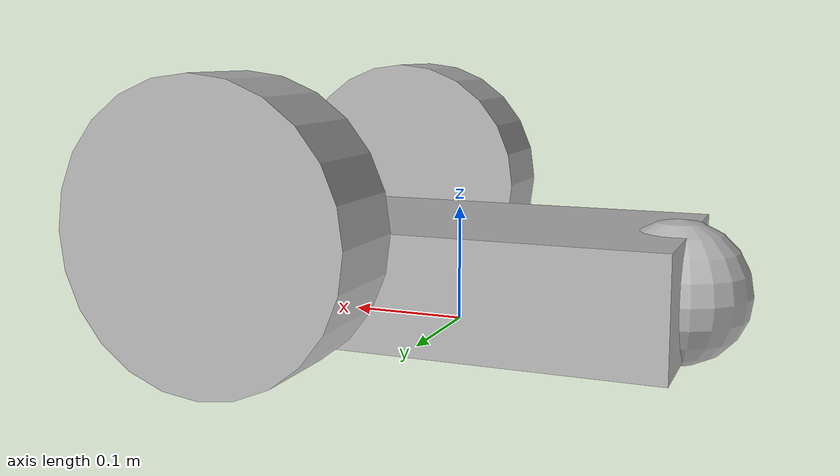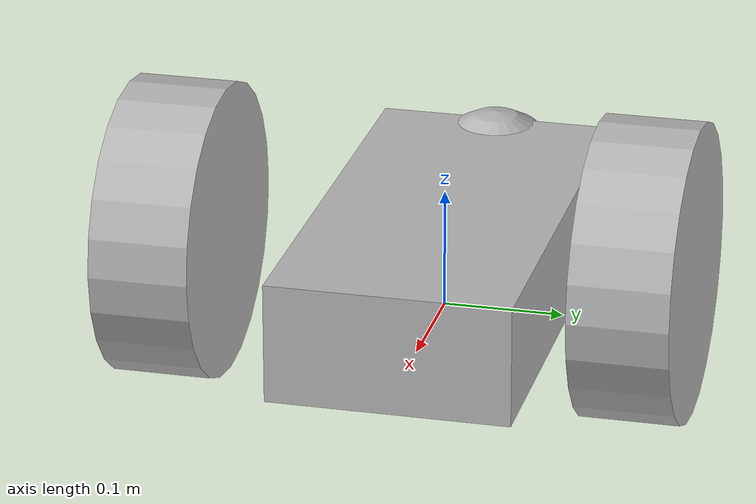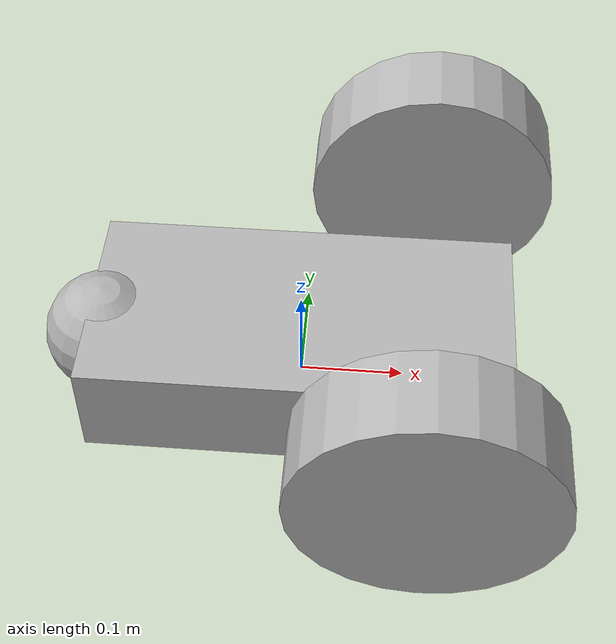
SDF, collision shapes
<?xml version='1.0'?>
<sdf version='1.4'>
  <model name="mobile_hagen_robot">
     <static>true</static>
       <link name='chassis'>
         <pose>0 0 .04 0 0 0</pose>
           <collision name='collision'>
             <geometry>
               <box>
                 <size>.4 .2 .1</size>
               </box>
             </geometry>
           </collision>

           <visual name='visual'>
             <pose> 0 0 0.02 0 0 0 </pose>
             <geometry>
               <mesh>
                 <uri>model://hagen_robot_model/meshes/robot.dae</uri>
                 <scale>0.9 0.5 0.5 </scale>
               </mesh>
             </geometry>
           </visual>

           <collision name='caster_collision'>
             <pose>-0.19 0 0 0 0 0</pose>
             <geometry>
               <sphere>
                 <radius>.06</radius>
               </sphere>
             </geometry>

             <surface>
               <friction>
                 <ode>
                   <mu>0</mu>
                   <mu2>0</mu2>
                   <slip1>1.0</slip1>
                   <slip2>1.0</slip2>
                 </ode>
               </friction>
             </surface>
           </collision>

           <visual name='caster_visual'>
             <pose>-0.19 0 0 0 0 0</pose>
             <geometry>
               <sphere>
                 <radius>.06</radius>
               </sphere>
             </geometry>
           </visual>
       </link>

       <link name="left_wheel">
         <pose>0.12 0.19 0.1 0 1.5707 1.5707</pose>
         <collision name="collision">
           <geometry>
             <cylinder>
               <radius>.12</radius>
               <length>.08</length>
             </cylinder>
           </geometry>
         </collision>
         <visual name="visual">
           <geometry>
             <cylinder>
               <radius>.12</radius>
               <length>.08</length>
             </cylinder>
           </geometry>
         </visual>
       </link>

       <link name="right_wheel">
         <pose>0.12 -0.19 0.1 0 1.5707 1.5707</pose>
         <collision name="collision">
           <geometry>
             <cylinder>
               <radius>.12</radius>
               <length>.08</length>
             </cylinder>
           </geometry>
         </collision>
         <visual name="visual">
           <geometry>
             <cylinder>
               <radius>.12</radius>
               <length>.08</length>
             </cylinder>
           </geometry>
         </visual>
       </link>

  </model>
</sdf>
